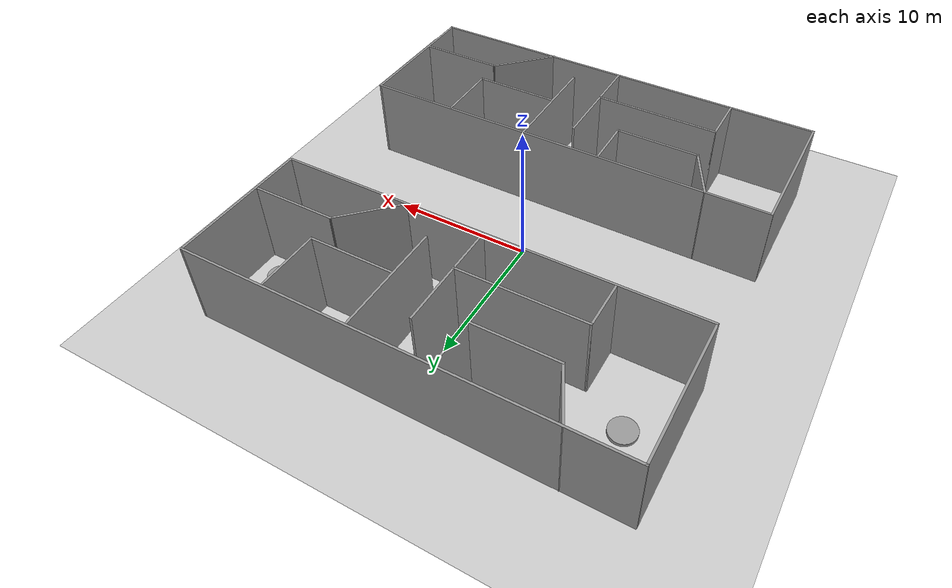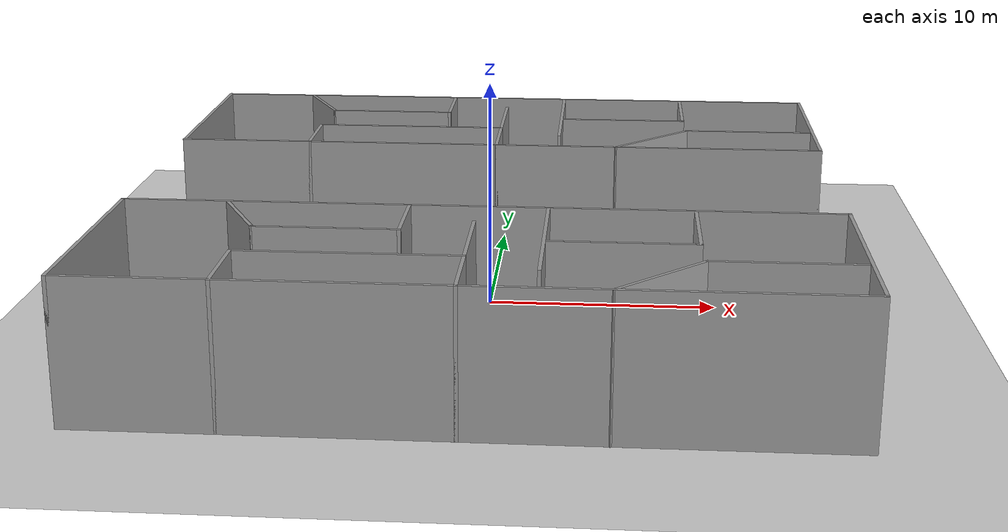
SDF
<sdf version="1.6">
 <world name="default">
  <light name="sun" type="directional">
   <pose>0 0 10 0 -0 0</pose>
   <diffuse>0.8 0.8 0.8 1</diffuse>
   <specular>0.2 0.2 0.2 1</specular>
   <attenuation>
    <range>1000</range>
    <constant>0.9</constant>
    <linear>0.01</linear>
    <quadratic>0.001</quadratic>
   </attenuation>
   <direction>-0.5 0.1 -0.9</direction>
  </light>
  <model name="ground_plane">
   <static>1</static>
   <link name="link">
    <collision name="collision">
     <geometry><plane><normal>0 0 1</normal><size>100 100</size></plane></geometry>
     <surface>
      <contact><collide_bitmask>65535</collide_bitmask></contact>
      <friction><ode><mu>100</mu><mu2>50</mu2></ode></friction>
     </surface>
    </collision>
    <visual name="visual">
     <cast_shadows>0</cast_shadows>
     <geometry><plane><normal>0 0 1</normal><size>100 100</size></plane></geometry>
     <material>
      <script><uri>file://media/materials/scripts/gazebo.material</uri><name>Gazebo/Grey</name></script>
     </material>
    </visual>
   </link>
  </model>
  <gravity>0 0 -9.8</gravity>
  <magnetic_field>6e-06 2.3e-05 -4.2e-05</magnetic_field>
  <atmosphere type="adiabatic"/>
  <physics name="default_physics" default="0" type="ode">
   <max_step_size>0.001</max_step_size>
   <real_time_factor>1</real_time_factor>
   <real_time_update_rate>1000</real_time_update_rate>
  </physics>
  <scene><ambient>0.4 0.4 0.4 1</ambient><background>0.7 0.7 0.7 1</background><shadows>1</shadows></scene>
  <spherical_coordinates>
   <surface_model>EARTH_WGS84</surface_model>
   <latitude_deg>0</latitude_deg>
   <longitude_deg>0</longitude_deg>
   <elevation>0</elevation>
   <heading_deg>0</heading_deg>
  </spherical_coordinates>
  <model name="static_cylinder">
   <link name="link">
    <inertial>
     <mass>1</mass>
     <inertia><ixx>0.145833</ixx><ixy>0</ixy><ixz>0</ixz><iyy>0.145833</iyy><iyz>0</iyz><izz>0.125</izz></inertia>
    </inertial>
    <visual name="visual">
     <geometry><cylinder><radius>0.935681</radius><length>0.376628</length></cylinder></geometry>
     <material>
      <script><name>Gazebo/Grey</name><uri>file://media/materials/scripts/gazebo.material</uri></script>
      <shader type="pixel"/>
      <ambient>0.3 0.3 0.3 1</ambient>
      <diffuse>0.7 0.7 0.7 1</diffuse>
      <specular>0.01 0.01 0.01 1</specular>
      <emissive>0 0 0 1</emissive>
     </material>
    </visual>
    <collision name="collision">
     <geometry><cylinder><radius>0.935681</radius><length>0.376628</length></cylinder></geometry>
     <surface>
      <friction>
       <ode><mu>1</mu><mu2>1</mu2><fdir1>0 0 0</fdir1><slip1>0</slip1><slip2>0</slip2></ode>
       <torsional>
        <coefficient>1</coefficient>
        <patch_radius>0</patch_radius>
        <surface_radius>0</surface_radius>
        <use_patch_radius>1</use_patch_radius>
        <ode><slip>0</slip></ode>
       </torsional>
      </friction>
      <bounce><restitution_coefficient>0</restitution_coefficient><threshold>1e+06</threshold></bounce>
      <contact>
       <collide_without_contact>0</collide_without_contact>
       <collide_without_contact_bitmask>1</collide_without_contact_bitmask>
       <collide_bitmask>1</collide_bitmask>
       <ode>
        <soft_cfm>0</soft_cfm>
        <soft_erp>0.2</soft_erp>
        <kp>1e+13</kp>
        <kd>1</kd>
        <max_vel>0.01</max_vel>
        <min_depth>0</min_depth>
       </ode>
       <bullet>
        <split_impulse>1</split_impulse>
        <split_impulse_penetration_threshold>-0.01</split_impulse_penetration_threshold>
        <soft_cfm>0</soft_cfm>
        <soft_erp>0.2</soft_erp>
        <kp>1e+13</kp>
        <kd>1</kd>
       </bullet>
      </contact>
     </surface>
    </collision>
   </link>
   <static>1</static>
   <pose>-12 10 0 0 -0 0</pose>
  </model>
  <model name="static_cylinder_clone">
   <link name="link">
    <inertial>
     <mass>1</mass>
     <inertia><ixx>0.145833</ixx><ixy>0</ixy><ixz>0</ixz><iyy>0.145833</iyy><iyz>0</iyz><izz>0.125</izz></inertia>
    </inertial>
    <visual name="visual">
     <geometry><cylinder><radius>0.935682</radius><length>0.376629</length></cylinder></geometry>
     <material>
      <script><name>Gazebo/Grey</name><uri>file://media/materials/scripts/gazebo.material</uri></script>
      <shader type="pixel"/>
      <ambient>0.3 0.3 0.3 1</ambient>
      <diffuse>0.7 0.7 0.7 1</diffuse>
      <specular>0.01 0.01 0.01 1</specular>
      <emissive>0 0 0 1</emissive>
     </material>
    </visual>
    <collision name="collision">
     <geometry><cylinder><radius>0.935682</radius><length>0.376629</length></cylinder></geometry>
     <surface>
      <friction>
       <ode><mu>1</mu><mu2>1</mu2><fdir1>0 0 0</fdir1><slip1>0</slip1><slip2>0</slip2></ode>
       <torsional>
        <coefficient>1</coefficient>
        <patch_radius>0</patch_radius>
        <surface_radius>0</surface_radius>
        <use_patch_radius>1</use_patch_radius>
        <ode><slip>0</slip></ode>
       </torsional>
      </friction>
      <bounce><restitution_coefficient>0</restitution_coefficient><threshold>1e+06</threshold></bounce>
      <contact>
       <collide_without_contact>0</collide_without_contact>
       <collide_without_contact_bitmask>1</collide_without_contact_bitmask>
       <collide_bitmask>1</collide_bitmask>
       <ode>
        <soft_cfm>0</soft_cfm>
        <soft_erp>0.2</soft_erp>
        <kp>1e+13</kp>
        <kd>1</kd>
        <max_vel>0.01</max_vel>
        <min_depth>0</min_depth>
       </ode>
       <bullet>
        <split_impulse>1</split_impulse>
        <split_impulse_penetration_threshold>-0.01</split_impulse_penetration_threshold>
        <soft_cfm>0</soft_cfm>
        <soft_erp>0.2</soft_erp>
        <kp>1e+13</kp>
        <kd>1</kd>
       </bullet>
      </contact>
     </surface>
    </collision>
   </link>
   <static>1</static>
   <pose>13 10 0 0 -0 0</pose>
  </model>
  <model name="static_cylinder_clone_0">
   <link name="link">
    <inertial>
     <mass>1</mass>
     <inertia><ixx>0.145833</ixx><ixy>0</ixy><ixz>0</ixz><iyy>0.145833</iyy><iyz>0</iyz><izz>0.125</izz></inertia>
    </inertial>
    <visual name="visual">
     <geometry><cylinder><radius>0.935682</radius><length>0.376629</length></cylinder></geometry>
     <material>
      <script><name>Gazebo/Grey</name><uri>file://media/materials/scripts/gazebo.material</uri></script>
      <shader type="pixel"/>
      <ambient>0.3 0.3 0.3 1</ambient>
      <diffuse>0.7 0.7 0.7 1</diffuse>
      <specular>0.01 0.01 0.01 1</specular>
      <emissive>0 0 0 1</emissive>
     </material>
    </visual>
    <collision name="collision">
     <geometry><cylinder><radius>0.935682</radius><length>0.376629</length></cylinder></geometry>
     <surface>
      <friction>
       <ode><mu>1</mu><mu2>1</mu2><fdir1>0 0 0</fdir1><slip1>0</slip1><slip2>0</slip2></ode>
       <torsional>
        <coefficient>1</coefficient>
        <patch_radius>0</patch_radius>
        <surface_radius>0</surface_radius>
        <use_patch_radius>1</use_patch_radius>
        <ode><slip>0</slip></ode>
       </torsional>
      </friction>
      <bounce><restitution_coefficient>0</restitution_coefficient><threshold>1e+06</threshold></bounce>
      <contact>
       <collide_without_contact>0</collide_without_contact>
       <collide_without_contact_bitmask>1</collide_without_contact_bitmask>
       <collide_bitmask>1</collide_bitmask>
       <ode>
        <soft_cfm>0</soft_cfm>
        <soft_erp>0.2</soft_erp>
        <kp>1e+13</kp>
        <kd>1</kd>
        <max_vel>0.01</max_vel>
        <min_depth>0</min_depth>
       </ode>
       <bullet>
        <split_impulse>1</split_impulse>
        <split_impulse_penetration_threshold>-0.01</split_impulse_penetration_threshold>
        <soft_cfm>0</soft_cfm>
        <soft_erp>0.2</soft_erp>
        <kp>1e+13</kp>
        <kd>1</kd>
       </bullet>
      </contact>
     </surface>
    </collision>
   </link>
   <static>1</static>
   <pose>-12 -10 0 0 -0 0</pose>
  </model>
  <model name="static_cylinder_clone_0_clone">
   <link name="link">
    <inertial>
     <mass>1</mass>
     <inertia><ixx>0.145833</ixx><ixy>0</ixy><ixz>0</ixz><iyy>0.145833</iyy><iyz>0</iyz><izz>0.125</izz></inertia>
    </inertial>
    <visual name="visual">
     <geometry><cylinder><radius>0.935682</radius><length>0.376629</length></cylinder></geometry>
     <material>
      <script><name>Gazebo/Grey</name><uri>file://media/materials/scripts/gazebo.material</uri></script>
      <shader type="pixel"/>
      <ambient>0.3 0.3 0.3 1</ambient>
      <diffuse>0.7 0.7 0.7 1</diffuse>
      <specular>0.01 0.01 0.01 1</specular>
      <emissive>0 0 0 1</emissive>
     </material>
    </visual>
    <collision name="collision">
     <geometry><cylinder><radius>0.935682</radius><length>0.376629</length></cylinder></geometry>
     <surface>
      <friction>
       <ode><mu>1</mu><mu2>1</mu2><fdir1>0 0 0</fdir1><slip1>0</slip1><slip2>0</slip2></ode>
       <torsional>
        <coefficient>1</coefficient>
        <patch_radius>0</patch_radius>
        <surface_radius>0</surface_radius>
        <use_patch_radius>1</use_patch_radius>
        <ode><slip>0</slip></ode>
       </torsional>
      </friction>
      <bounce><restitution_coefficient>0</restitution_coefficient><threshold>1e+06</threshold></bounce>
      <contact>
       <collide_without_contact>0</collide_without_contact>
       <collide_without_contact_bitmask>1</collide_without_contact_bitmask>
       <collide_bitmask>1</collide_bitmask>
       <ode>
        <soft_cfm>0</soft_cfm>
        <soft_erp>0.2</soft_erp>
        <kp>1e+13</kp>
        <kd>1</kd>
        <max_vel>0.01</max_vel>
        <min_depth>0</min_depth>
       </ode>
       <bullet>
        <split_impulse>1</split_impulse>
        <split_impulse_penetration_threshold>-0.01</split_impulse_penetration_threshold>
        <soft_cfm>0</soft_cfm>
        <soft_erp>0.2</soft_erp>
        <kp>1e+13</kp>
        <kd>1</kd>
       </bullet>
      </contact>
     </surface>
    </collision>
   </link>
   <static>1</static>
   <pose>13 -10 0 0 -0 0</pose>
  </model>
  <model name="simple_maze_7">
   <pose>0 10 0 0 -0 0</pose>
   <link name="Wall_0">
    <collision name="Wall_0_Collision">
     <geometry><box><size>10 0.15 6</size></box></geometry>
     <pose>0 0 3 0 -0 0</pose>
    </collision>
    <visual name="Wall_0_Visual">
     <pose>0 0 3 0 -0 0</pose>
     <geometry><box><size>10 0.15 6</size></box></geometry>
     <material>
      <script><uri>file://media/materials/scripts/gazebo.material</uri><name>Gazebo/Grey</name></script>
      <ambient>1 1 1 1</ambient>
     </material>
     <meta><layer>0</layer></meta>
    </visual>
    <pose>-14.925 0.012224 0 0 0 -1.5708</pose>
   </link>
   <link name="Wall_1">
    <collision name="Wall_1_Collision">
     <geometry><box><size>30 0.15 6</size></box></geometry>
     <pose>0 0 3 0 -0 0</pose>
    </collision>
    <visual name="Wall_1_Visual">
     <pose>0 0 3 0 -0 0</pose>
     <geometry><box><size>30 0.15 6</size></box></geometry>
     <material>
      <script><uri>file://media/materials/scripts/gazebo.material</uri><name>Gazebo/Grey</name></script>
      <ambient>1 1 1 1</ambient>
     </material>
     <meta><layer>0</layer></meta>
    </visual>
    <pose>0 -4.91278 0 0 -0 0</pose>
   </link>
   <link name="Wall_10">
    <collision name="Wall_10_Collision">
     <geometry><box><size>3.5 0.15 6</size></box></geometry>
     <pose>0 0 3 0 -0 0</pose>
    </collision>
    <visual name="Wall_10_Visual">
     <pose>0 0 3 0 -0 0</pose>
     <geometry><box><size>3.5 0.15 6</size></box></geometry>
     <material>
      <script><uri>file://media/materials/scripts/gazebo.material</uri><name>Gazebo/Grey</name></script>
      <ambient>1 1 1 1</ambient>
     </material>
     <meta><layer>0</layer></meta>
    </visual>
    <pose>-8.945 -3.23778 0 0 -0 1.5708</pose>
   </link>
   <link name="Wall_11">
    <collision name="Wall_11_Collision">
     <geometry><box><size>9 0.15 6</size></box></geometry>
     <pose>0 0 3 0 -0 0</pose>
    </collision>
    <visual name="Wall_11_Visual">
     <pose>0 0 3 0 -0 0</pose>
     <geometry><box><size>9 0.15 6</size></box></geometry>
     <material>
      <script><uri>file://media/materials/scripts/gazebo.material</uri><name>Gazebo/Grey</name></script>
      <ambient>1 1 1 1</ambient>
     </material>
     <meta><layer>0</layer></meta>
    </visual>
    <pose>-4.52 -1.56278 0 0 -0 0</pose>
   </link>
   <link name="Wall_12">
    <collision name="Wall_12_Collision">
     <geometry><box><size>4.5 0.15 6</size></box></geometry>
     <pose>0 0 3 0 -0 0</pose>
    </collision>
    <visual name="Wall_12_Visual">
     <pose>0 0 3 0 -0 0</pose>
     <geometry><box><size>4.5 0.15 6</size></box></geometry>
     <material>
      <script><uri>file://media/materials/scripts/gazebo.material</uri><name>Gazebo/Grey</name></script>
      <ambient>1 1 1 1</ambient>
     </material>
     <meta><layer>0</layer></meta>
    </visual>
    <pose>-0.095 0.612224 0 0 -0 1.5708</pose>
   </link>
   <link name="Wall_16">
    <collision name="Wall_16_Collision">
     <geometry><box><size>8 0.15 6</size></box></geometry>
     <pose>0 0 3 0 -0 0</pose>
    </collision>
    <visual name="Wall_16_Visual">
     <pose>0 0 3 0 -0 0</pose>
     <geometry><box><size>8 0.15 6</size></box></geometry>
     <material>
      <script><uri>file://media/materials/scripts/gazebo.material</uri><name>Gazebo/Grey</name></script>
      <ambient>1 1 1 1</ambient>
     </material>
     <meta><layer>0</layer></meta>
    </visual>
    <pose>2.775 0.982224 0 0 0 -1.5708</pose>
   </link>
   <link name="Wall_18">
    <collision name="Wall_18_Collision">
     <geometry><box><size>3.5 0.15 6</size></box></geometry>
     <pose>0 0 3 0 -0 0</pose>
    </collision>
    <visual name="Wall_18_Visual">
     <pose>0 0 3 0 -0 0</pose>
     <geometry><box><size>3.5 0.15 6</size></box></geometry>
     <material>
      <script><uri>file://media/materials/scripts/gazebo.material</uri><name>Gazebo/Grey</name></script>
      <ambient>1 1 1 1</ambient>
     </material>
     <meta><layer>0</layer></meta>
    </visual>
    <pose>-0.095 -3.23778 0 0 0 -1.5708</pose>
   </link>
   <link name="Wall_2">
    <collision name="Wall_2_Collision">
     <geometry><box><size>10 0.15 6</size></box></geometry>
     <pose>0 0 3 0 -0 0</pose>
    </collision>
    <visual name="Wall_2_Visual">
     <pose>0 0 3 0 -0 0</pose>
     <geometry><box><size>10 0.15 6</size></box></geometry>
     <material>
      <script><uri>file://media/materials/scripts/gazebo.material</uri><name>Gazebo/Grey</name></script>
      <ambient>1 1 1 1</ambient>
     </material>
     <meta><layer>0</layer></meta>
    </visual>
    <pose>14.925 0.012224 0 0 -0 1.5708</pose>
   </link>
   <link name="Wall_20">
    <collision name="Wall_20_Collision">
     <geometry><box><size>5 0.15 6</size></box></geometry>
     <pose>0 0 3 0 -0 0</pose>
    </collision>
    <visual name="Wall_20_Visual">
     <pose>0 0 3 0 -0 0</pose>
     <geometry><box><size>5 0.15 6</size></box></geometry>
     <material>
      <script><uri>file://media/materials/scripts/gazebo.material</uri><name>Gazebo/Grey</name></script>
      <ambient>1 1 1 1</ambient>
     </material>
     <meta><layer>0</layer></meta>
    </visual>
    <pose>7.1895 -3.21828 0 0 -0 0.785398</pose>
   </link>
   <link name="Wall_21">
    <collision name="Wall_21_Collision">
     <geometry><box><size>6 0.15 6</size></box></geometry>
     <pose>0 0 3 0 -0 0</pose>
    </collision>
    <visual name="Wall_21_Visual">
     <pose>0 0 3 0 -0 0</pose>
     <geometry><box><size>6 0.15 6</size></box></geometry>
     <material>
      <script><uri>file://media/materials/scripts/gazebo.material</uri><name>Gazebo/Grey</name></script>
      <ambient>1 1 1 1</ambient>
     </material>
     <meta><layer>0</layer></meta>
    </visual>
    <pose>11.829 -1.50378 0 0 -0 0</pose>
   </link>
   <link name="Wall_28">
    <collision name="Wall_28_Collision">
     <geometry><box><size>4.5 0.15 6</size></box></geometry>
     <pose>0 0 3 0 -0 0</pose>
    </collision>
    <visual name="Wall_28_Visual">
     <pose>0 0 3 0 -0 0</pose>
     <geometry><box><size>4.5 0.15 6</size></box></geometry>
     <material>
      <script><uri>file://media/materials/scripts/gazebo.material</uri><name>Gazebo/Grey</name></script>
      <ambient>1 1 1 1</ambient>
     </material>
     <meta><layer>0</layer></meta>
    </visual>
    <pose>8.765 2.65223 0 0 0 -1.5708</pose>
   </link>
   <link name="Wall_29">
    <collision name="Wall_29_Collision">
     <geometry><box><size>6 0.15 6</size></box></geometry>
     <pose>0 0 3 0 -0 0</pose>
    </collision>
    <visual name="Wall_29_Visual">
     <pose>0 0 3 0 -0 0</pose>
     <geometry><box><size>6 0.15 6</size></box></geometry>
     <material>
      <script><uri>file://media/materials/scripts/gazebo.material</uri><name>Gazebo/Grey</name></script>
      <ambient>1 1 1 1</ambient>
     </material>
     <meta><layer>0</layer></meta>
    </visual>
    <pose>5.84 0.477225 0 0 -0 3.14159</pose>
   </link>
   <link name="Wall_3">
    <collision name="Wall_3_Collision">
     <geometry><box><size>30 0.15 6</size></box></geometry>
     <pose>0 0 3 0 -0 0</pose>
    </collision>
    <visual name="Wall_3_Visual">
     <pose>0 0 3 0 -0 0</pose>
     <geometry><box><size>30 0.15 6</size></box></geometry>
     <material>
      <script><uri>file://media/materials/scripts/gazebo.material</uri><name>Gazebo/Grey</name></script>
      <ambient>1 1 1 1</ambient>
     </material>
     <meta><layer>0</layer></meta>
    </visual>
    <pose>0 4.93722 0 0 -0 3.14159</pose>
   </link>
   <link name="Wall_6">
    <collision name="Wall_6_Collision">
     <geometry><box><size>3.5 0.15 6</size></box></geometry>
     <pose>0 0 3 0 -0 0</pose>
    </collision>
    <visual name="Wall_6_Visual">
     <pose>0 0 3 0 -0 0</pose>
     <geometry><box><size>3.5 0.15 6</size></box></geometry>
     <material>
      <script><uri>file://media/materials/scripts/gazebo.material</uri><name>Gazebo/Grey</name></script>
      <ambient>1 1 1 1</ambient>
     </material>
     <meta><layer>0</layer></meta>
    </visual>
    <pose>-2.935 3.19223 0 0 0 -1.5708</pose>
   </link>
   <link name="Wall_7">
    <collision name="Wall_7_Collision">
     <geometry><box><size>6 0.15 6</size></box></geometry>
     <pose>0 0 3 0 -0 0</pose>
    </collision>
    <visual name="Wall_7_Visual">
     <pose>0 0 3 0 -0 0</pose>
     <geometry><box><size>6 0.15 6</size></box></geometry>
     <material>
      <script><uri>file://media/materials/scripts/gazebo.material</uri><name>Gazebo/Grey</name></script>
      <ambient>1 1 1 1</ambient>
     </material>
     <meta><layer>0</layer></meta>
    </visual>
    <pose>-5.86 1.52722 0 0 -0 3.14159</pose>
   </link>
   <link name="Wall_8">
    <collision name="Wall_8_Collision">
     <geometry><box><size>3.9769 0.15 6</size></box></geometry>
     <pose>0 0 3 0 -0 0</pose>
    </collision>
    <visual name="Wall_8_Visual">
     <pose>0 0 3 0 -0 0</pose>
     <geometry><box><size>3.9769 0.15 6</size></box></geometry>
     <material>
      <script><uri>file://media/materials/scripts/gazebo.material</uri><name>Gazebo/Grey</name></script>
      <ambient>1 1 1 1</ambient>
     </material>
     <meta><layer>0</layer></meta>
    </visual>
    <pose>-9.6525 3.23272 0 0 -0 2.04134</pose>
   </link>
   <static>1</static>
  </model>
  <model name="simple_maze_7_0">
   <pose>0 -10 0 0 -0 0</pose>
   <link name="Wall_0">
    <collision name="Wall_0_Collision">
     <geometry><box><size>10 0.15 6</size></box></geometry>
     <pose>0 0 3 0 -0 0</pose>
    </collision>
    <visual name="Wall_0_Visual">
     <pose>0 0 3 0 -0 0</pose>
     <geometry><box><size>10 0.15 6</size></box></geometry>
     <material>
      <script><uri>file://media/materials/scripts/gazebo.material</uri><name>Gazebo/Grey</name></script>
      <ambient>1 1 1 1</ambient>
     </material>
     <meta><layer>0</layer></meta>
    </visual>
    <pose>-14.925 0.012224 0 0 0 -1.5708</pose>
   </link>
   <link name="Wall_1">
    <collision name="Wall_1_Collision">
     <geometry><box><size>30 0.15 6</size></box></geometry>
     <pose>0 0 3 0 -0 0</pose>
    </collision>
    <visual name="Wall_1_Visual">
     <pose>0 0 3 0 -0 0</pose>
     <geometry><box><size>30 0.15 6</size></box></geometry>
     <material>
      <script><uri>file://media/materials/scripts/gazebo.material</uri><name>Gazebo/Grey</name></script>
      <ambient>1 1 1 1</ambient>
     </material>
     <meta><layer>0</layer></meta>
    </visual>
    <pose>0 -4.91278 0 0 -0 0</pose>
   </link>
   <link name="Wall_10">
    <collision name="Wall_10_Collision">
     <geometry><box><size>3.5 0.15 6</size></box></geometry>
     <pose>0 0 3 0 -0 0</pose>
    </collision>
    <visual name="Wall_10_Visual">
     <pose>0 0 3 0 -0 0</pose>
     <geometry><box><size>3.5 0.15 6</size></box></geometry>
     <material>
      <script><uri>file://media/materials/scripts/gazebo.material</uri><name>Gazebo/Grey</name></script>
      <ambient>1 1 1 1</ambient>
     </material>
     <meta><layer>0</layer></meta>
    </visual>
    <pose>-8.945 -3.23778 0 0 -0 1.5708</pose>
   </link>
   <link name="Wall_11">
    <collision name="Wall_11_Collision">
     <geometry><box><size>9 0.15 6</size></box></geometry>
     <pose>0 0 3 0 -0 0</pose>
    </collision>
    <visual name="Wall_11_Visual">
     <pose>0 0 3 0 -0 0</pose>
     <geometry><box><size>9 0.15 6</size></box></geometry>
     <material>
      <script><uri>file://media/materials/scripts/gazebo.material</uri><name>Gazebo/Grey</name></script>
      <ambient>1 1 1 1</ambient>
     </material>
     <meta><layer>0</layer></meta>
    </visual>
    <pose>-4.52 -1.56278 0 0 -0 0</pose>
   </link>
   <link name="Wall_12">
    <collision name="Wall_12_Collision">
     <geometry><box><size>4.5 0.15 6</size></box></geometry>
     <pose>0 0 3 0 -0 0</pose>
    </collision>
    <visual name="Wall_12_Visual">
     <pose>0 0 3 0 -0 0</pose>
     <geometry><box><size>4.5 0.15 6</size></box></geometry>
     <material>
      <script><uri>file://media/materials/scripts/gazebo.material</uri><name>Gazebo/Grey</name></script>
      <ambient>1 1 1 1</ambient>
     </material>
     <meta><layer>0</layer></meta>
    </visual>
    <pose>-0.095 0.612224 0 0 -0 1.5708</pose>
   </link>
   <link name="Wall_16">
    <collision name="Wall_16_Collision">
     <geometry><box><size>8 0.15 6</size></box></geometry>
     <pose>0 0 3 0 -0 0</pose>
    </collision>
    <visual name="Wall_16_Visual">
     <pose>0 0 3 0 -0 0</pose>
     <geometry><box><size>8 0.15 6</size></box></geometry>
     <material>
      <script><uri>file://media/materials/scripts/gazebo.material</uri><name>Gazebo/Grey</name></script>
      <ambient>1 1 1 1</ambient>
     </material>
     <meta><layer>0</layer></meta>
    </visual>
    <pose>2.775 0.982224 0 0 0 -1.5708</pose>
   </link>
   <link name="Wall_18">
    <collision name="Wall_18_Collision">
     <geometry><box><size>3.5 0.15 6</size></box></geometry>
     <pose>0 0 3 0 -0 0</pose>
    </collision>
    <visual name="Wall_18_Visual">
     <pose>0 0 3 0 -0 0</pose>
     <geometry><box><size>3.5 0.15 6</size></box></geometry>
     <material>
      <script><uri>file://media/materials/scripts/gazebo.material</uri><name>Gazebo/Grey</name></script>
      <ambient>1 1 1 1</ambient>
     </material>
     <meta><layer>0</layer></meta>
    </visual>
    <pose>-0.095 -3.23778 0 0 0 -1.5708</pose>
   </link>
   <link name="Wall_2">
    <collision name="Wall_2_Collision">
     <geometry><box><size>10 0.15 6</size></box></geometry>
     <pose>0 0 3 0 -0 0</pose>
    </collision>
    <visual name="Wall_2_Visual">
     <pose>0 0 3 0 -0 0</pose>
     <geometry><box><size>10 0.15 6</size></box></geometry>
     <material>
      <script><uri>file://media/materials/scripts/gazebo.material</uri><name>Gazebo/Grey</name></script>
      <ambient>1 1 1 1</ambient>
     </material>
     <meta><layer>0</layer></meta>
    </visual>
    <pose>14.925 0.012224 0 0 -0 1.5708</pose>
   </link>
   <link name="Wall_20">
    <collision name="Wall_20_Collision">
     <geometry><box><size>5 0.15 6</size></box></geometry>
     <pose>0 0 3 0 -0 0</pose>
    </collision>
    <visual name="Wall_20_Visual">
     <pose>0 0 3 0 -0 0</pose>
     <geometry><box><size>5 0.15 6</size></box></geometry>
     <material>
      <script><uri>file://media/materials/scripts/gazebo.material</uri><name>Gazebo/Grey</name></script>
      <ambient>1 1 1 1</ambient>
     </material>
     <meta><layer>0</layer></meta>
    </visual>
    <pose>7.1895 -3.21828 0 0 -0 0.785398</pose>
   </link>
   <link name="Wall_21">
    <collision name="Wall_21_Collision">
     <geometry><box><size>6 0.15 6</size></box></geometry>
     <pose>0 0 3 0 -0 0</pose>
    </collision>
    <visual name="Wall_21_Visual">
     <pose>0 0 3 0 -0 0</pose>
     <geometry><box><size>6 0.15 6</size></box></geometry>
     <material>
      <script><uri>file://media/materials/scripts/gazebo.material</uri><name>Gazebo/Grey</name></script>
      <ambient>1 1 1 1</ambient>
     </material>
     <meta><layer>0</layer></meta>
    </visual>
    <pose>11.829 -1.50378 0 0 -0 0</pose>
   </link>
   <link name="Wall_28">
    <collision name="Wall_28_Collision">
     <geometry><box><size>4.5 0.15 6</size></box></geometry>
     <pose>0 0 3 0 -0 0</pose>
    </collision>
    <visual name="Wall_28_Visual">
     <pose>0 0 3 0 -0 0</pose>
     <geometry><box><size>4.5 0.15 6</size></box></geometry>
     <material>
      <script><uri>file://media/materials/scripts/gazebo.material</uri><name>Gazebo/Grey</name></script>
      <ambient>1 1 1 1</ambient>
     </material>
     <meta><layer>0</layer></meta>
    </visual>
    <pose>8.765 2.65223 0 0 0 -1.5708</pose>
   </link>
   <link name="Wall_29">
    <collision name="Wall_29_Collision">
     <geometry><box><size>6 0.15 6</size></box></geometry>
     <pose>0 0 3 0 -0 0</pose>
    </collision>
    <visual name="Wall_29_Visual">
     <pose>0 0 3 0 -0 0</pose>
     <geometry><box><size>6 0.15 6</size></box></geometry>
     <material>
      <script><uri>file://media/materials/scripts/gazebo.material</uri><name>Gazebo/Grey</name></script>
      <ambient>1 1 1 1</ambient>
     </material>
     <meta><layer>0</layer></meta>
    </visual>
    <pose>5.84 0.477225 0 0 -0 3.14159</pose>
   </link>
   <link name="Wall_3">
    <collision name="Wall_3_Collision">
     <geometry><box><size>30 0.15 6</size></box></geometry>
     <pose>0 0 3 0 -0 0</pose>
    </collision>
    <visual name="Wall_3_Visual">
     <pose>0 0 3 0 -0 0</pose>
     <geometry><box><size>30 0.15 6</size></box></geometry>
     <material>
      <script><uri>file://media/materials/scripts/gazebo.material</uri><name>Gazebo/Grey</name></script>
      <ambient>1 1 1 1</ambient>
     </material>
     <meta><layer>0</layer></meta>
    </visual>
    <pose>0 4.93722 0 0 -0 3.14159</pose>
   </link>
   <link name="Wall_6">
    <collision name="Wall_6_Collision">
     <geometry><box><size>3.5 0.15 6</size></box></geometry>
     <pose>0 0 3 0 -0 0</pose>
    </collision>
    <visual name="Wall_6_Visual">
     <pose>0 0 3 0 -0 0</pose>
     <geometry><box><size>3.5 0.15 6</size></box></geometry>
     <material>
      <script><uri>file://media/materials/scripts/gazebo.material</uri><name>Gazebo/Grey</name></script>
      <ambient>1 1 1 1</ambient>
     </material>
     <meta><layer>0</layer></meta>
    </visual>
    <pose>-2.935 3.19223 0 0 0 -1.5708</pose>
   </link>
   <link name="Wall_7">
    <collision name="Wall_7_Collision">
     <geometry><box><size>6 0.15 6</size></box></geometry>
     <pose>0 0 3 0 -0 0</pose>
    </collision>
    <visual name="Wall_7_Visual">
     <pose>0 0 3 0 -0 0</pose>
     <geometry><box><size>6 0.15 6</size></box></geometry>
     <material>
      <script><uri>file://media/materials/scripts/gazebo.material</uri><name>Gazebo/Grey</name></script>
      <ambient>1 1 1 1</ambient>
     </material>
     <meta><layer>0</layer></meta>
    </visual>
    <pose>-5.86 1.52722 0 0 -0 3.14159</pose>
   </link>
   <link name="Wall_8">
    <collision name="Wall_8_Collision">
     <geometry><box><size>3.9769 0.15 6</size></box></geometry>
     <pose>0 0 3 0 -0 0</pose>
    </collision>
    <visual name="Wall_8_Visual">
     <pose>0 0 3 0 -0 0</pose>
     <geometry><box><size>3.9769 0.15 6</size></box></geometry>
     <material>
      <script><uri>file://media/materials/scripts/gazebo.material</uri><name>Gazebo/Grey</name></script>
      <ambient>1 1 1 1</ambient>
     </material>
     <meta><layer>0</layer></meta>
    </visual>
    <pose>-9.6525 3.23272 0 0 -0 2.04134</pose>
   </link>
   <static>1</static>
  </model>
 </world>
</sdf>
